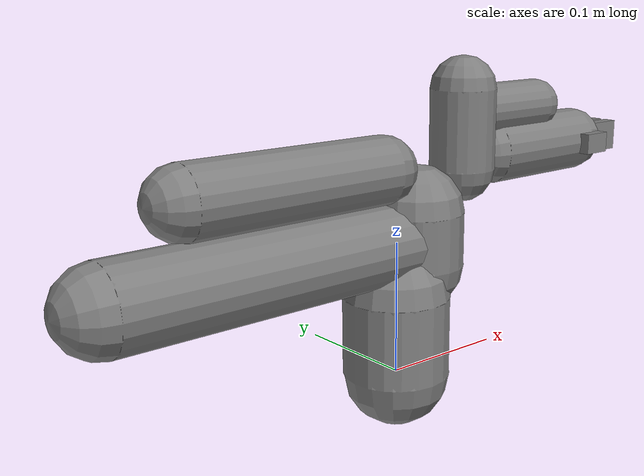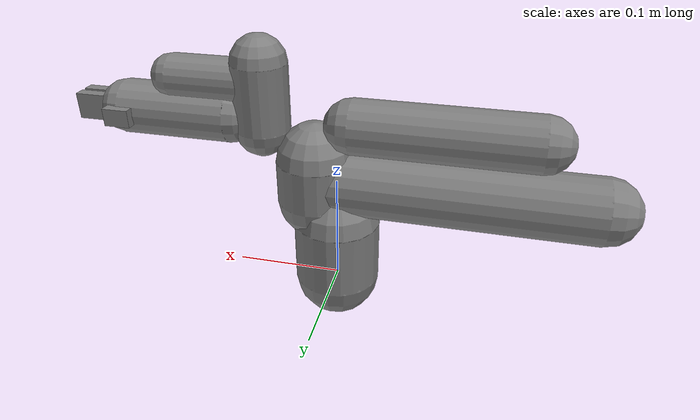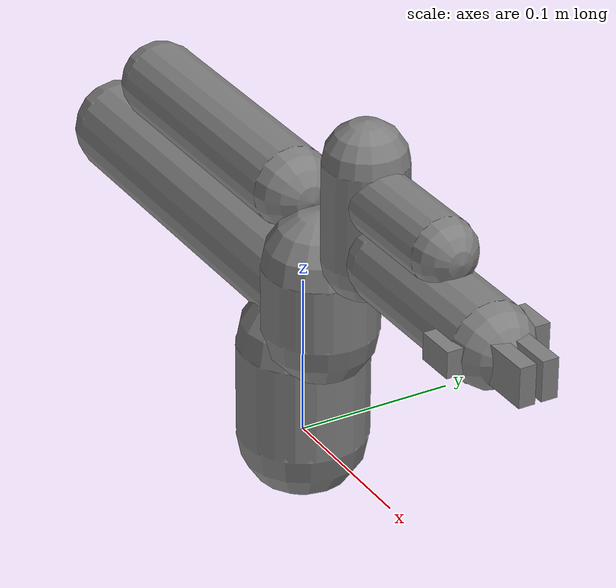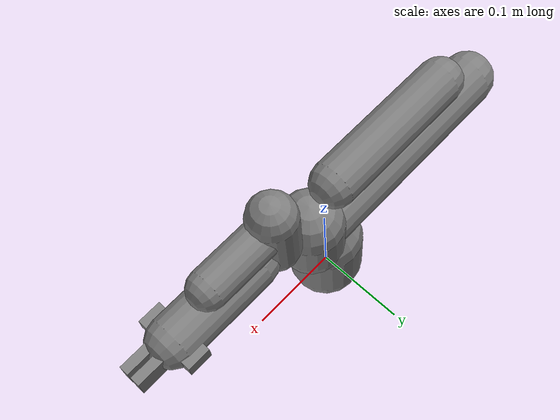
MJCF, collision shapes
<mujoco model="arx5">
  <compiler angle="radian" meshdir="assets"/>

  <default>
    <default class="arx5">
      <site group="5" size="0.005" rgba="0 1 0 1"/>
      <joint axis="0 0 1" damping="0.1"/>
      <default class="visual">
        <geom type="mesh" contype="0" conaffinity="0" density="0" group="2" material="silver"/>
      </default>
      <default class="collision">
        <geom group="3" type="capsule"/>
      </default>
      <default class="finger">
        <joint type="slide" axis="0 1 0"/>
      </default>
    </default>
  </default>

  <asset>
    <material name="silver" rgba="0.75 0.75 0.75 1"/>
    <material name="dark" rgba="0.3 0.3 0.3 1"/>
    <material name="white" rgba="0.9 0.92 0.93 1"/>

    <mesh file="meshes/X5/base_link.STL"/>
    <mesh file="meshes/X5/link1.STL"/>
    <mesh file="meshes/X5/link2.STL"/>
    <mesh file="meshes/X5/link3.STL"/>
    <mesh file="meshes/X5/link4.STL"/>
    <mesh file="meshes/X5/link5.STL"/>
    <mesh file="meshes/X5/link6.STL"/>
    <mesh file="meshes/X5/link7.STL"/>
    <mesh file="meshes/X5/link8.STL"/>
  </asset>

  <worldbody>
    <light name="spotlight" mode="targetbodycom" target="link6" pos="0 0 1"/>
    <body name="arm" childclass="arx5">
      <!-- base_link -->
      <inertial pos="-3.764e-5 6.519e-5 0.03037877" mass="0.428"
        fullinertia="0.00060728 0.00060832 1.917e-4 3.437e-7 9.790e-7 -1.696e-6"/>
      <geom class="visual" mesh="base_link"/>
      <geom name="base_collision" class="collision" size="0.04 0.03" pos="0 0 0.03" quat="1 0 0 0"/>

      <!-- link1 -->
      <body name="link1" pos="0 0 0.0603">
        <inertial pos="0.00571213 0.0002547 0.01750661" mass="0.064"
          fullinertia="0.00008 0.00003 0.00007 0.0 0.00001 0.0"/>
        <joint name="joint1" axis="0 0 1" range="-3.14159 3.14159" armature="0.033"/>
        <geom class="visual" mesh="link1"/>
        <geom name="link1_collision" class="collision" size="0.025 0.015" pos="0 0 0.02" quat="1 0 0 0"/>

        <!-- link2 -->
        <body name="link2" pos="0.02 0 0.0402">
          <inertial pos="-0.13225701 0.00072373 4.274e-5" mass="1.165"
            fullinertia="0.00057063 0.03669927 0.03683489 0.00011251 0.00001979 1.203e-8"/>
          <joint name="joint2" axis="0 1 0" range="0 3.14159" armature="0.033"/>
          <geom class="visual" mesh="link2"/>
          <geom name="link2_1_collision" class="collision" size="0.03 0.12" pos="-0.13 0 0" quat="1 0 1 0"/>
          <geom name="link2_2_collision" class="collision" size="0.035 0.02" pos="0 0 0" quat="1 0 0 0"/>

          <!-- link3: rpy="-3.1416 0 0" from URDF = 180° around X -->
          <body name="link3" pos="-0.264 0 0" quat="0 1 0 0">
            <inertial pos="0.19096098 0.00069065 -0.05342172" mass="0.546"
              fullinertia="0.00178249 0.02486615 0.02329476 -0.00003986 0.00571 1.346e-5"/>
            <joint name="joint3" axis="0 1 0" range="0 3.14159" armature="0.033"/>
            <geom class="visual" mesh="link3"/>
            <geom name="link3_1_collision" class="collision" size="0.025 0.08" pos="0.15 0 -0.055" quat="1 0 1 0"/>

            <!-- link4 -->
            <body name="link4" pos="0.245 0 -0.056">
              <inertial pos="0.03092317 0.0066107 -0.03138504" mass="0.080971"
                fullinertia="0.00017832 0.00021182 0.00011328 0.00001697 0.0000776 -0.00001779"/>
              <joint name="joint4" axis="0 1 0" range="-1.5708 1.5708" armature="0.0018"/>
              <geom class="visual" mesh="link4" material="white"/>
              <geom name="link4_collision" class="collision" size="0.025 0.03" pos="0.06575 -0.001 -0.02" quat="1 0 0 0"/>

              <!-- link5 -->
              <body name="link5" pos="0.06575 -0.001 -0.0825">
                <inertial pos="0.0040681 0.00000885 0.05120675" mass="0.655"
                  fullinertia="0.00254972 0.00255018 0.00026961 2.600e-7 -0.00021534 -5.980e-7"/>
                <joint name="joint5" axis="0 0 1" range="-1.67 1.67" armature="0.0018"/>
                <geom class="visual" mesh="link5"/>
                <geom name="link5_collision" class="collision" size="0.02 0.04" pos="0.04 0 0.05" quat="1 0 1 0"/>

                <!-- link6: rpy="-3.1416 0 0" from URDF = 180° around X -->
                <body name="link6" pos="0.02845 0 0.0825" quat="0 1 0 0">
                  <inertial pos="0.05435277 0 0" mass="0.7"
                    fullinertia="0.00029 0.00028 0.00045 0.0 0.0 -0.00001"/>
                  <joint name="joint6" axis="1 0 0" range="-1.5708 1.5708" armature="0.0018"/>
                  <geom class="visual" mesh="link6" material="white"/>
                  <geom name="link6_1_collision" class="collision" size="0.025 0.05" pos="0.05 0 0" quat="1 0 1 0"/>

                  <!-- End effector sites -->
                  <site name="tcp_site" pos="0.145 0 0" quat="0.5 0.5 -0.5 0.5"/>
                  <site name="grasp_site" pos="0.145 0 0" quat="0.5 0.5 -0.5 0.5"/>

                  <!-- Left gripper finger (link7) -->
                  <body name="link7" pos="0.08657 0.024896 -0.0002436">
                    <inertial pos="-0.00035522 -0.007827 -0.0029883" mass="0.064798"
                      fullinertia="0.00002 0.00003 0.00003 0.0 0.0 0.0"/>
                    <joint class="finger" name="left_finger" range="0 0.044" armature="0.001"/>
                    <geom class="visual" mesh="link7"/>
                    <!-- Finger base (connection part) -->
                    <geom name="link7_base_collision" class="collision" type="box" size="0.012 0.012 0.008" pos="0.01 -0.005 0"/>
                    <!-- Finger tip (gripping surface) - inner face contacts cube -->
                    <geom name="link7_tip_collision" class="collision" type="box" size="0.025 0.005 0.012" pos="0.035 -0.018 0"/>
                  </body>

                  <!-- Right gripper finger (link8) -->
                  <body name="link8" pos="0.08657 -0.0249 -0.00024366">
                    <inertial pos="-0.00035522 0.0078277 0.0024201" mass="0.064798"
                      fullinertia="0.00002 0.00003 0.00003 0.0 0.0 0.0"/>
                    <joint class="finger" name="right_finger" axis="0 -1 0" range="0 0.044" armature="0.001"/>
                    <geom class="visual" mesh="link8"/>
                    <!-- Finger base (connection part) -->
                    <geom name="link8_base_collision" class="collision" type="box" size="0.012 0.012 0.008" pos="0.01 0.005 0"/>
                    <!-- Finger tip (gripping surface) - inner face contacts cube -->
                    <geom name="link8_tip_collision" class="collision" type="box" size="0.025 0.005 0.012" pos="0.035 0.018 0"/>
                  </body>
                </body>
              </body>
            </body>
          </body>
        </body>
      </body>
    </body>
  </worldbody>

  <!-- Couple left and right gripper fingers to move together -->
  <equality>
    <joint joint1="left_finger" joint2="right_finger" polycoef="0 1 0 0 0"/>
  </equality>

  <!-- PD position actuators: kp=stiffness, kv=damping -->
  <!-- X5 default kp: [80.0, 70.0, 70.0, 30.0, 30.0, 20.0, 1.0]-->
  <!-- X5 default kd: [2.0, 2.0, 2.0, 1.0, 1.0, 0.7, 0.01]-->
</mujoco>
